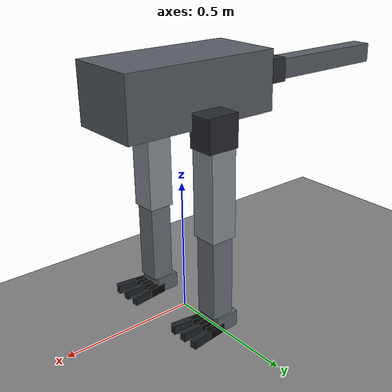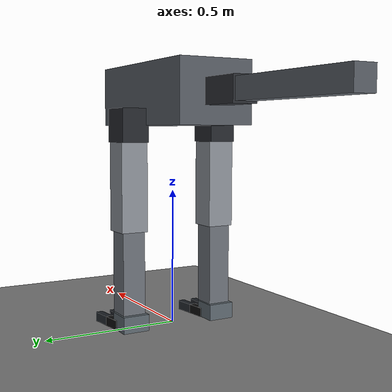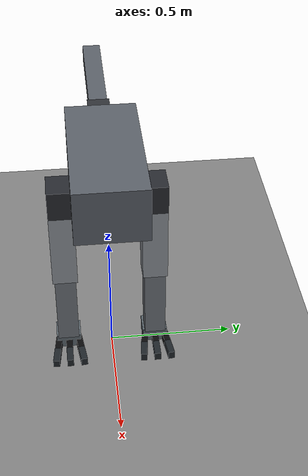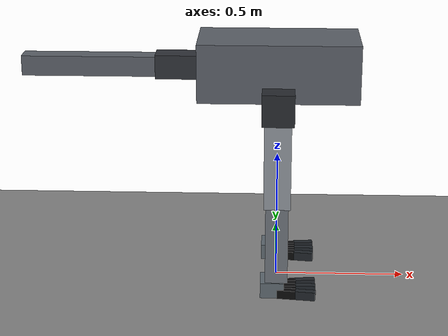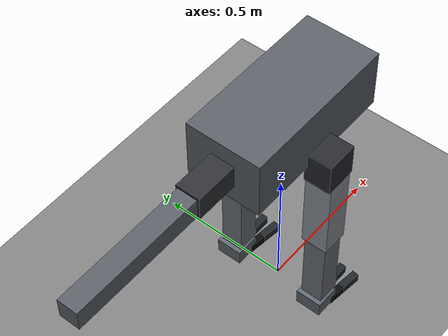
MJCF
<!-- Generated by sim/build_model.py from URDF sha256:6bfff7df8955aaa4. Do not edit. -->
<mujoco model="raptor">
  <compiler angle="radian"/>

  <option timestep="0.001" integrator="implicitfast" cone="elliptic"/>

  <worldbody>
    <geom name="floor" size="0 0 0.05" type="plane"/>
    <body name="base_root">
      <joint name="floating_base" type="free"/>
      <body name="base_link" pos="0 0 0.85">
        <inertial pos="0 0 0" quat="0 0.707107 0 0.707107" mass="8" diaginertia="0.2923 0.2691 0.0843"/>
        <geom size="0.3 0.14 0.11" type="box" conaffinity="0" rgba="0.35 0.37 0.4 1"/>
        <site name="imu"/>
        <body name="left_hip_roll_link" pos="0 0.18 -0.05">
          <inertial pos="0 0 -0.06" mass="0.8" diaginertia="0.0016 0.0016 0.0013"/>
          <joint name="left_hip_roll_joint" range="-0.5 0.5" actuatorfrcrange="-80 80" axis="1 0 0"/>
          <geom size="0.06 0.05 0.06" pos="0 0 -0.06" type="box" conaffinity="0" rgba="0.15 0.16 0.18 1"/>
          <body name="left_thigh_link" pos="0 0 -0.12">
            <inertial pos="0 0 -0.16" mass="1.5" diaginertia="0.014 0.014 0.0025"/>
            <joint name="left_hip_pitch_joint" range="-1.2 0.8" actuatorfrcrange="-100 100" axis="0 1 0"/>
            <geom size="0.05 0.05 0.16" pos="0 0 -0.16" type="box" conaffinity="0" rgba="0.55 0.57 0.6 1"/>
            <body name="left_shin_link" pos="0 0 -0.32">
              <inertial pos="0 0 -0.15" mass="1.1" diaginertia="0.0089 0.0089 0.0013"/>
              <joint name="left_knee_pitch_joint" range="0 2.2" actuatorfrcrange="-120 120" axis="0 1 0"/>
              <geom size="0.0425 0.0425 0.15" pos="0 0 -0.15" type="box" conaffinity="0" rgba="0.42 0.44 0.47 1"/>
              <body name="left_foot_link" pos="0 0 -0.3">
                <inertial pos="-0.015 0 -0.03" quat="0.5 0.5 -0.5 0.5" mass="0.3" diaginertia="0.0004525 0.00034 0.0002925"/>
                <joint name="left_ankle_pitch_joint" range="-0.7 0.7" actuatorfrcrange="-80 80" axis="0 1 0"/>
                <geom size="0.045 0.05 0.03" pos="-0.015 0 -0.03" type="box" conaffinity="0" rgba="0.36 0.4 0.43 1"/>
                <body name="left_toe_1_proximal_link" pos="0.005 0.04 -0.043" quat="0.998201 0 0 0.059964">
                  <inertial pos="0.035 0 0" quat="0.5 0.5 0.5 0.5" mass="0.05" diaginertia="2.52333e-05 2.32333e-05 7.63333e-06"/>
                  <joint name="left_toe_1_proximal_joint" stiffness="12" range="-0.55 0.65" actuatorfrcrange="-5 5" damping="0.08" frictionloss="0.005" axis="0 1 0"/>
                  <geom size="0.035 0.013 0.017" pos="0.035 0 0" type="box" conaffinity="0" priority="1" friction="0.8" rgba="0.035 0.035 0.04 1"/>
                  <body name="left_toe_1_distal_link" pos="0.07 0 0">
                    <inertial pos="0.0375 0 0" quat="0.5 0.5 0.5 0.5" mass="0.05" diaginertia="2.82542e-05 2.62542e-05 7.63333e-06"/>
                    <joint name="left_toe_1_distal_joint" stiffness="8" range="-0.55 0.65" actuatorfrcrange="-5 5" damping="0.08" frictionloss="0.005" axis="0 1 0"/>
                    <geom size="0.0375 0.013 0.017" pos="0.0375 0 0" type="box" conaffinity="0" priority="1" friction="0.8" rgba="0.12 0.14 0.16 1"/>
                  </body>
                </body>
                <body name="left_toe_2_proximal_link" pos="0.005 0 -0.043">
                  <inertial pos="0.035 0 0" quat="0.5 0.5 0.5 0.5" mass="0.05" diaginertia="2.52333e-05 2.32333e-05 7.63333e-06"/>
                  <joint name="left_toe_2_proximal_joint" stiffness="12" range="-0.55 0.65" actuatorfrcrange="-5 5" damping="0.08" frictionloss="0.005" axis="0 1 0"/>
                  <geom size="0.035 0.013 0.017" pos="0.035 0 0" type="box" conaffinity="0" priority="1" friction="0.8" rgba="0.035 0.035 0.04 1"/>
                  <body name="left_toe_2_distal_link" pos="0.07 0 0">
                    <inertial pos="0.0375 0 0" quat="0.5 0.5 0.5 0.5" mass="0.05" diaginertia="2.82542e-05 2.62542e-05 7.63333e-06"/>
                    <joint name="left_toe_2_distal_joint" stiffness="8" range="-0.55 0.65" actuatorfrcrange="-5 5" damping="0.08" frictionloss="0.005" axis="0 1 0"/>
                    <geom size="0.0375 0.013 0.017" pos="0.0375 0 0" type="box" conaffinity="0" priority="1" friction="0.8" rgba="0.12 0.14 0.16 1"/>
                  </body>
                </body>
                <body name="left_toe_3_proximal_link" pos="0.005 -0.04 -0.043" quat="0.998201 0 0 -0.059964">
                  <inertial pos="0.035 0 0" quat="0.5 0.5 0.5 0.5" mass="0.05" diaginertia="2.52333e-05 2.32333e-05 7.63333e-06"/>
                  <joint name="left_toe_3_proximal_joint" stiffness="12" range="-0.55 0.65" actuatorfrcrange="-5 5" damping="0.08" frictionloss="0.005" axis="0 1 0"/>
                  <geom size="0.035 0.013 0.017" pos="0.035 0 0" type="box" conaffinity="0" priority="1" friction="0.8" rgba="0.035 0.035 0.04 1"/>
                  <body name="left_toe_3_distal_link" pos="0.07 0 0">
                    <inertial pos="0.0375 0 0" quat="0.5 0.5 0.5 0.5" mass="0.05" diaginertia="2.82542e-05 2.62542e-05 7.63333e-06"/>
                    <joint name="left_toe_3_distal_joint" stiffness="8" range="-0.55 0.65" actuatorfrcrange="-5 5" damping="0.08" frictionloss="0.005" axis="0 1 0"/>
                    <geom size="0.0375 0.013 0.017" pos="0.0375 0 0" type="box" conaffinity="0" priority="1" friction="0.8" rgba="0.12 0.14 0.16 1"/>
                  </body>
                </body>
              </body>
            </body>
          </body>
        </body>
        <body name="right_hip_roll_link" pos="0 -0.18 -0.05">
          <inertial pos="0 0 -0.06" mass="0.8" diaginertia="0.0016 0.0016 0.0013"/>
          <joint name="right_hip_roll_joint" range="-0.5 0.5" actuatorfrcrange="-80 80" axis="-1 0 0"/>
          <geom size="0.06 0.05 0.06" pos="0 0 -0.06" type="box" conaffinity="0" rgba="0.15 0.16 0.18 1"/>
          <body name="right_thigh_link" pos="0 0 -0.12">
            <inertial pos="0 0 -0.16" mass="1.5" diaginertia="0.014 0.014 0.0025"/>
            <joint name="right_hip_pitch_joint" range="-1.2 0.8" actuatorfrcrange="-100 100" axis="0 1 0"/>
            <geom size="0.05 0.05 0.16" pos="0 0 -0.16" type="box" conaffinity="0" rgba="0.55 0.57 0.6 1"/>
            <body name="right_shin_link" pos="0 0 -0.32">
              <inertial pos="0 0 -0.15" mass="1.1" diaginertia="0.0089 0.0089 0.0013"/>
              <joint name="right_knee_pitch_joint" range="0 2.2" actuatorfrcrange="-120 120" axis="0 1 0"/>
              <geom size="0.0425 0.0425 0.15" pos="0 0 -0.15" type="box" conaffinity="0" rgba="0.42 0.44 0.47 1"/>
              <body name="right_foot_link" pos="0 0 -0.3">
                <inertial pos="-0.015 0 -0.03" quat="0.5 0.5 -0.5 0.5" mass="0.3" diaginertia="0.0004525 0.00034 0.0002925"/>
                <joint name="right_ankle_pitch_joint" range="-0.7 0.7" actuatorfrcrange="-80 80" axis="0 1 0"/>
                <geom size="0.045 0.05 0.03" pos="-0.015 0 -0.03" type="box" conaffinity="0" rgba="0.36 0.4 0.43 1"/>
                <body name="right_toe_1_proximal_link" pos="0.005 0.04 -0.043" quat="0.998201 0 0 0.059964">
                  <inertial pos="0.035 0 0" quat="0.5 0.5 0.5 0.5" mass="0.05" diaginertia="2.52333e-05 2.32333e-05 7.63333e-06"/>
                  <joint name="right_toe_1_proximal_joint" stiffness="12" range="-0.55 0.65" actuatorfrcrange="-5 5" damping="0.08" frictionloss="0.005" axis="0 1 0"/>
                  <geom size="0.035 0.013 0.017" pos="0.035 0 0" type="box" conaffinity="0" priority="1" friction="0.8" rgba="0.035 0.035 0.04 1"/>
                  <body name="right_toe_1_distal_link" pos="0.07 0 0">
                    <inertial pos="0.0375 0 0" quat="0.5 0.5 0.5 0.5" mass="0.05" diaginertia="2.82542e-05 2.62542e-05 7.63333e-06"/>
                    <joint name="right_toe_1_distal_joint" stiffness="8" range="-0.55 0.65" actuatorfrcrange="-5 5" damping="0.08" frictionloss="0.005" axis="0 1 0"/>
                    <geom size="0.0375 0.013 0.017" pos="0.0375 0 0" type="box" conaffinity="0" priority="1" friction="0.8" rgba="0.12 0.14 0.16 1"/>
                  </body>
                </body>
                <body name="right_toe_2_proximal_link" pos="0.005 0 -0.043">
                  <inertial pos="0.035 0 0" quat="0.5 0.5 0.5 0.5" mass="0.05" diaginertia="2.52333e-05 2.32333e-05 7.63333e-06"/>
                  <joint name="right_toe_2_proximal_joint" stiffness="12" range="-0.55 0.65" actuatorfrcrange="-5 5" damping="0.08" frictionloss="0.005" axis="0 1 0"/>
                  <geom size="0.035 0.013 0.017" pos="0.035 0 0" type="box" conaffinity="0" priority="1" friction="0.8" rgba="0.035 0.035 0.04 1"/>
                  <body name="right_toe_2_distal_link" pos="0.07 0 0">
                    <inertial pos="0.0375 0 0" quat="0.5 0.5 0.5 0.5" mass="0.05" diaginertia="2.82542e-05 2.62542e-05 7.63333e-06"/>
                    <joint name="right_toe_2_distal_joint" stiffness="8" range="-0.55 0.65" actuatorfrcrange="-5 5" damping="0.08" frictionloss="0.005" axis="0 1 0"/>
                    <geom size="0.0375 0.013 0.017" pos="0.0375 0 0" type="box" conaffinity="0" priority="1" friction="0.8" rgba="0.12 0.14 0.16 1"/>
                  </body>
                </body>
                <body name="right_toe_3_proximal_link" pos="0.005 -0.04 -0.043" quat="0.998201 0 0 -0.059964">
                  <inertial pos="0.035 0 0" quat="0.5 0.5 0.5 0.5" mass="0.05" diaginertia="2.52333e-05 2.32333e-05 7.63333e-06"/>
                  <joint name="right_toe_3_proximal_joint" stiffness="12" range="-0.55 0.65" actuatorfrcrange="-5 5" damping="0.08" frictionloss="0.005" axis="0 1 0"/>
                  <geom size="0.035 0.013 0.017" pos="0.035 0 0" type="box" conaffinity="0" priority="1" friction="0.8" rgba="0.035 0.035 0.04 1"/>
                  <body name="right_toe_3_distal_link" pos="0.07 0 0">
                    <inertial pos="0.0375 0 0" quat="0.5 0.5 0.5 0.5" mass="0.05" diaginertia="2.82542e-05 2.62542e-05 7.63333e-06"/>
                    <joint name="right_toe_3_distal_joint" stiffness="8" range="-0.55 0.65" actuatorfrcrange="-5 5" damping="0.08" frictionloss="0.005" axis="0 1 0"/>
                    <geom size="0.0375 0.013 0.017" pos="0.0375 0 0" type="box" conaffinity="0" priority="1" friction="0.8" rgba="0.12 0.14 0.16 1"/>
                  </body>
                </body>
              </body>
            </body>
          </body>
        </body>
        <body name="tail_yaw_link" pos="-0.3 0 0">
          <inertial pos="-0.08 0 0" quat="0.5 0.5 0.5 0.5" mass="0.5" diaginertia="0.0014 0.0014 0.0007"/>
          <joint name="tail_yaw_joint" range="-0.8 0.8" actuatorfrcrange="-50 50"/>
          <geom size="0.08 0.045 0.045" pos="-0.08 0 0" type="box" conaffinity="0" rgba="0.18 0.19 0.21 1"/>
          <body name="tail_link" pos="-0.16 0 0">
            <inertial pos="-0.25 0 0" quat="0.5 0.5 0.5 0.5" mass="0.8" diaginertia="0.0169 0.0169 0.0008"/>
            <joint name="tail_pitch_joint" range="-0.6 0.6" actuatorfrcrange="-50 50" axis="0 1 0"/>
            <geom size="0.25 0.0375 0.0375" pos="-0.25 0 0" type="box" conaffinity="0" rgba="0.35 0.37 0.4 1"/>
          </body>
        </body>
      </body>
    </body>
  </worldbody>

  <actuator>
    <general name="left_hip_roll_joint" joint="left_hip_roll_joint" ctrlrange="-2 2" ctrllimited="true" forcelimited="true" forcerange="-80 80" biastype="affine" gainprm="100" biasprm="0 0 -100"/>
    <general name="left_hip_pitch_joint" joint="left_hip_pitch_joint" ctrlrange="-2.5 2.5" ctrllimited="true" forcelimited="true" forcerange="-100 100" biastype="affine" gainprm="100" biasprm="0 0 -100"/>
    <general name="left_knee_pitch_joint" joint="left_knee_pitch_joint" ctrlrange="-3 3" ctrllimited="true" forcelimited="true" forcerange="-120 120" biastype="affine" gainprm="100" biasprm="0 0 -100"/>
    <general name="left_ankle_pitch_joint" joint="left_ankle_pitch_joint" ctrlrange="-2.5 2.5" ctrllimited="true" forcelimited="true" forcerange="-80 80" biastype="affine" gainprm="100" biasprm="0 0 -100"/>
    <general name="right_hip_roll_joint" joint="right_hip_roll_joint" ctrlrange="-2 2" ctrllimited="true" forcelimited="true" forcerange="-80 80" biastype="affine" gainprm="100" biasprm="0 0 -100"/>
    <general name="right_hip_pitch_joint" joint="right_hip_pitch_joint" ctrlrange="-2.5 2.5" ctrllimited="true" forcelimited="true" forcerange="-100 100" biastype="affine" gainprm="100" biasprm="0 0 -100"/>
    <general name="right_knee_pitch_joint" joint="right_knee_pitch_joint" ctrlrange="-3 3" ctrllimited="true" forcelimited="true" forcerange="-120 120" biastype="affine" gainprm="100" biasprm="0 0 -100"/>
    <general name="right_ankle_pitch_joint" joint="right_ankle_pitch_joint" ctrlrange="-2.5 2.5" ctrllimited="true" forcelimited="true" forcerange="-80 80" biastype="affine" gainprm="100" biasprm="0 0 -100"/>
    <general name="tail_yaw_joint" joint="tail_yaw_joint" ctrlrange="-2 2" ctrllimited="true" forcelimited="true" forcerange="-50 50" biastype="affine" gainprm="100" biasprm="0 0 -100"/>
    <general name="tail_pitch_joint" joint="tail_pitch_joint" ctrlrange="-2 2" ctrllimited="true" forcelimited="true" forcerange="-50 50" biastype="affine" gainprm="100" biasprm="0 0 -100"/>
  </actuator>

  <sensor>
    <framequat objtype="site" objname="imu" name="imu_quat"/>
    <gyro site="imu" name="imu_gyro"/>
  </sensor>
</mujoco>
